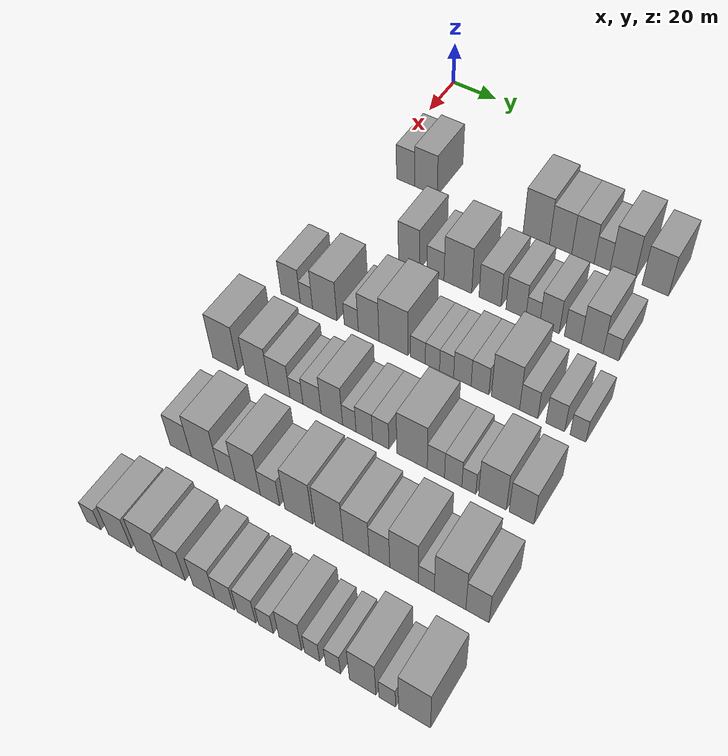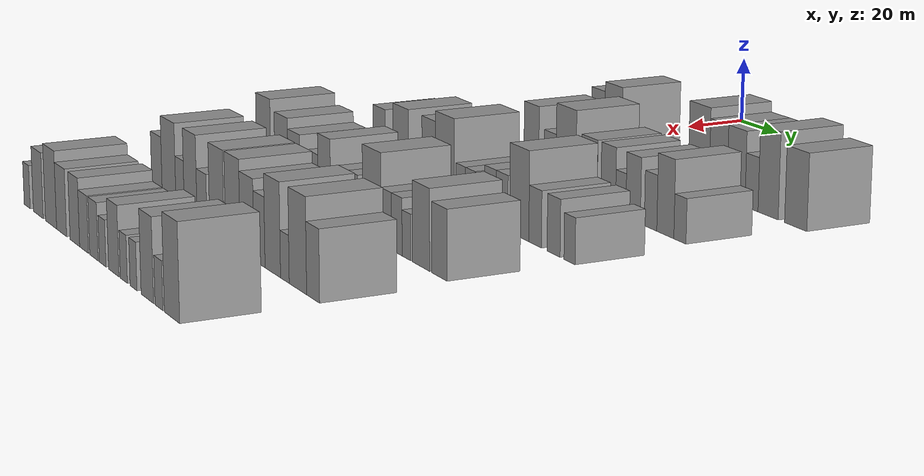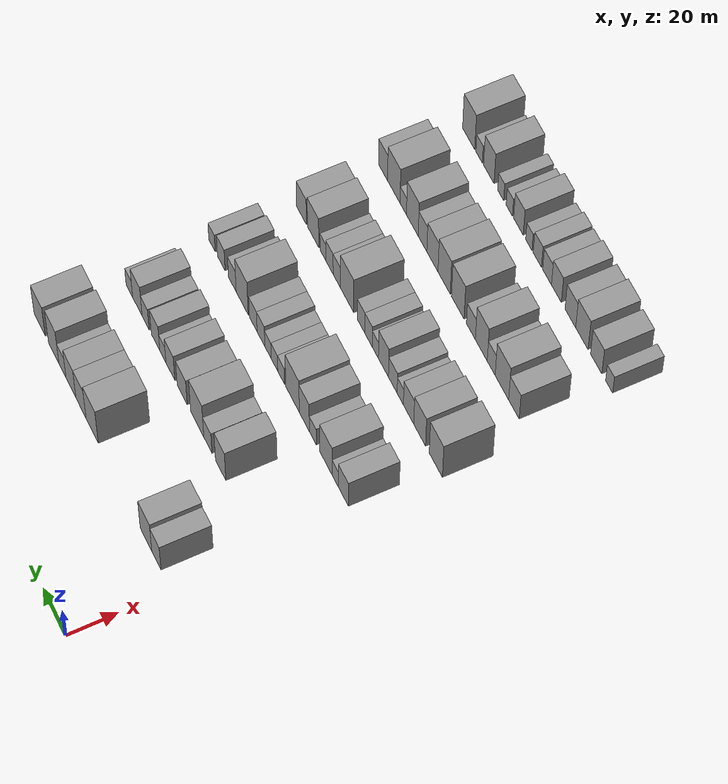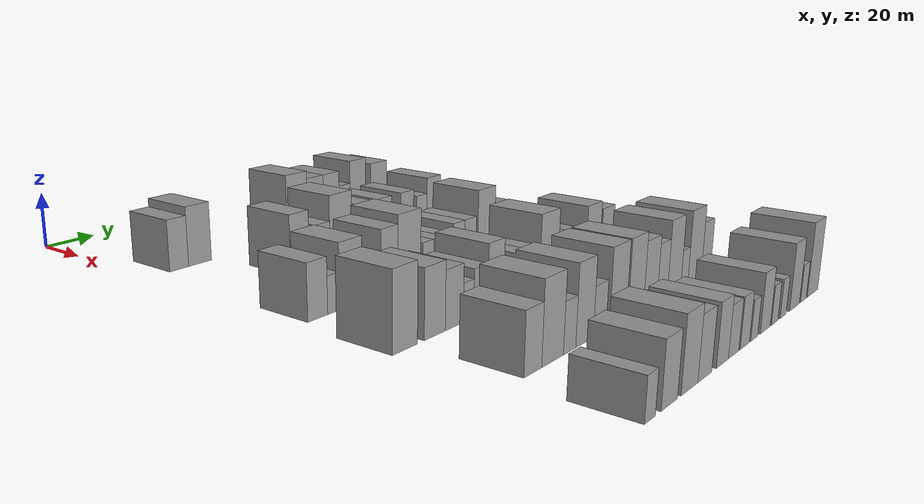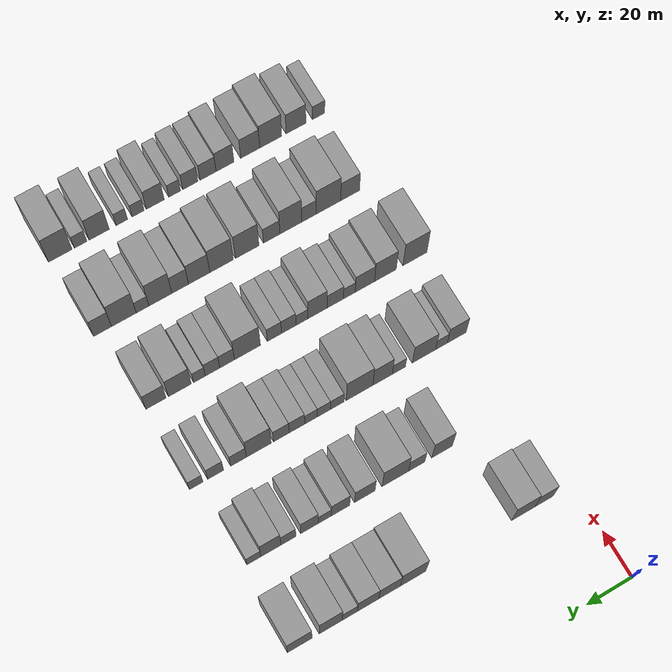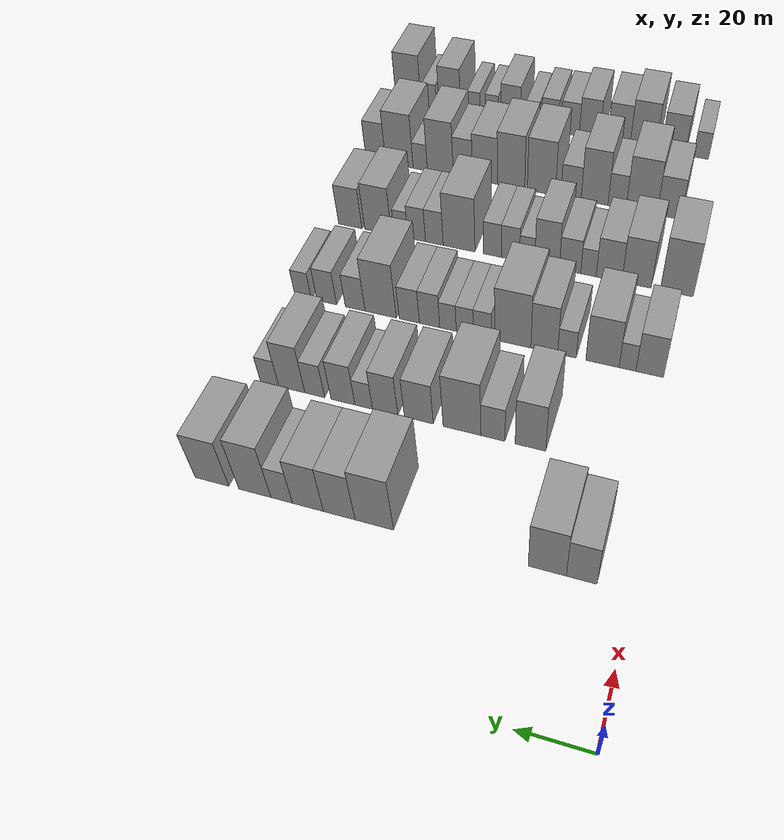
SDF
<sdf version="1.6">
 <world name="default">
  <model name="building_67">
   <static>1</static>
   <pose>50.0000 12.7950 0 0.000000 0.000000 0.000000</pose>
   <link name="link">
    <pose>0 0 9.00 0 0 0</pose>
    <collision name="collision"><geometry><box><size>20.0000 8.0103 18.0000</size></box></geometry></collision>
    <visual name="visual">
     <cast_shadows>0</cast_shadows>
     <geometry><box><size>20.0000 8.0103 18.0000</size></box></geometry>
     <material>
      <script>
       <uri>model://grey_wall/materials/scripts</uri>
       <uri>model://grey_wall/materials/textures</uri>
       <name>vrc/grey_wall</name>
      </script>
     </material>
    </visual>
   </link>
  </model>
  <model name="building_68">
   <static>1</static>
   <pose>50.0000 21.8541 0 0.000000 0.000000 0.000000</pose>
   <link name="link">
    <pose>0 0 10.50 0 0 0</pose>
    <collision name="collision"><geometry><box><size>20.0000 10.1078 21.0000</size></box></geometry></collision>
    <visual name="visual">
     <cast_shadows>0</cast_shadows>
     <geometry><box><size>20.0000 10.1078 21.0000</size></box></geometry>
     <material>
      <script>
       <uri>model://grey_wall/materials/scripts</uri>
       <uri>model://grey_wall/materials/textures</uri>
       <name>vrc/grey_wall</name>
      </script>
     </material>
    </visual>
   </link>
  </model>
  <model name="building_69">
   <static>1</static>
   <pose>50.0000 69.3415 0 0.000000 0.000000 0.000000</pose>
   <link name="link">
    <pose>0 0 12.00 0 0 0</pose>
    <collision name="collision"><geometry><box><size>20.0000 10.9557 24.0000</size></box></geometry></collision>
    <visual name="visual">
     <cast_shadows>0</cast_shadows>
     <geometry><box><size>20.0000 10.9557 24.0000</size></box></geometry>
     <material>
      <script>
       <uri>model://grey_wall/materials/scripts</uri>
       <uri>model://grey_wall/materials/textures</uri>
       <name>vrc/grey_wall</name>
      </script>
     </material>
    </visual>
   </link>
  </model>
  <model name="building_70">
   <static>1</static>
   <pose>50.0000 79.3716 0 0.000000 0.000000 0.000000</pose>
   <link name="link">
    <pose>0 0 10.50 0 0 0</pose>
    <collision name="collision"><geometry><box><size>20.0000 9.1044 21.0000</size></box></geometry></collision>
    <visual name="visual">
     <cast_shadows>0</cast_shadows>
     <geometry><box><size>20.0000 9.1044 21.0000</size></box></geometry>
     <material>
      <script>
       <uri>model://grey_wall/materials/scripts</uri>
       <uri>model://grey_wall/materials/textures</uri>
       <name>vrc/grey_wall</name>
      </script>
     </material>
    </visual>
   </link>
  </model>
  <model name="building_71">
   <static>1</static>
   <pose>50.0000 88.4283 0 0.000000 0.000000 0.000000</pose>
   <link name="link">
    <pose>0 0 10.50 0 0 0</pose>
    <collision name="collision"><geometry><box><size>20.0000 9.0091 21.0000</size></box></geometry></collision>
    <visual name="visual">
     <cast_shadows>0</cast_shadows>
     <geometry><box><size>20.0000 9.0091 21.0000</size></box></geometry>
     <material>
      <script>
       <uri>model://grey_wall/materials/scripts</uri>
       <uri>model://grey_wall/materials/textures</uri>
       <name>vrc/grey_wall</name>
      </script>
     </material>
    </visual>
   </link>
  </model>
  <model name="building_72">
   <static>1</static>
   <pose>50.0000 96.1173 0 0.000000 0.000000 0.000000</pose>
   <link name="link">
    <pose>0 0 7.50 0 0 0</pose>
    <collision name="collision"><geometry><box><size>20.0000 6.3689 15.0000</size></box></geometry></collision>
    <visual name="visual">
     <cast_shadows>0</cast_shadows>
     <geometry><box><size>20.0000 6.3689 15.0000</size></box></geometry>
     <material>
      <script>
       <uri>model://grey_wall/materials/scripts</uri>
       <uri>model://grey_wall/materials/textures</uri>
       <name>vrc/grey_wall</name>
      </script>
     </material>
    </visual>
   </link>
  </model>
  <model name="building_73">
   <static>1</static>
   <pose>50.0000 104.1100 0 0.000000 0.000000 0.000000</pose>
   <link name="link">
    <pose>0 0 12.00 0 0 0</pose>
    <collision name="collision"><geometry><box><size>20.0000 9.6165 24.0000</size></box></geometry></collision>
    <visual name="visual">
     <cast_shadows>0</cast_shadows>
     <geometry><box><size>20.0000 9.6165 24.0000</size></box></geometry>
     <material>
      <script>
       <uri>model://grey_wall/materials/scripts</uri>
       <uri>model://grey_wall/materials/textures</uri>
       <name>vrc/grey_wall</name>
      </script>
     </material>
    </visual>
   </link>
  </model>
  <model name="building_74">
   <static>1</static>
   <pose>50.0000 117.0434 0 0.000000 0.000000 0.000000</pose>
   <link name="link">
    <pose>0 0 10.50 0 0 0</pose>
    <collision name="collision"><geometry><box><size>20.0000 10.2503 21.0000</size></box></geometry></collision>
    <visual name="visual">
     <cast_shadows>0</cast_shadows>
     <geometry><box><size>20.0000 10.2503 21.0000</size></box></geometry>
     <material>
      <script>
       <uri>model://grey_wall/materials/scripts</uri>
       <uri>model://grey_wall/materials/textures</uri>
       <name>vrc/grey_wall</name>
      </script>
     </material>
    </visual>
   </link>
  </model>
  <model name="building_185">
   <static>1</static>
   <pose>85.0000 35.5126 0 0.000000 0.000000 0.000000</pose>
   <link name="link">
    <pose>0 0 10.50 0 0 0</pose>
    <collision name="collision"><geometry><box><size>20.0000 8.9503 21.0000</size></box></geometry></collision>
    <visual name="visual">
     <cast_shadows>0</cast_shadows>
     <geometry><box><size>20.0000 8.9503 21.0000</size></box></geometry>
     <material>
      <script>
       <uri>model://grey_wall/materials/scripts</uri>
       <uri>model://grey_wall/materials/textures</uri>
       <name>vrc/grey_wall</name>
      </script>
     </material>
    </visual>
   </link>
  </model>
  <model name="building_186">
   <static>1</static>
   <pose>85.0000 46.5726 0 0.000000 0.000000 0.000000</pose>
   <link name="link">
    <pose>0 0 7.50 0 0 0</pose>
    <collision name="collision"><geometry><box><size>20.0000 7.1698 15.0000</size></box></geometry></collision>
    <visual name="visual">
     <cast_shadows>0</cast_shadows>
     <geometry><box><size>20.0000 7.1698 15.0000</size></box></geometry>
     <material>
      <script>
       <uri>model://grey_wall/materials/scripts</uri>
       <uri>model://grey_wall/materials/textures</uri>
       <name>vrc/grey_wall</name>
      </script>
     </material>
    </visual>
   </link>
  </model>
  <model name="building_187">
   <static>1</static>
   <pose>85.0000 55.8489 0 0.000000 0.000000 0.000000</pose>
   <link name="link">
    <pose>0 0 12.00 0 0 0</pose>
    <collision name="collision"><geometry><box><size>20.0000 11.3827 24.0000</size></box></geometry></collision>
    <visual name="visual">
     <cast_shadows>0</cast_shadows>
     <geometry><box><size>20.0000 11.3827 24.0000</size></box></geometry>
     <material>
      <script>
       <uri>model://grey_wall/materials/scripts</uri>
       <uri>model://grey_wall/materials/textures</uri>
       <name>vrc/grey_wall</name>
      </script>
     </material>
    </visual>
   </link>
  </model>
  <model name="building_188">
   <static>1</static>
   <pose>85.0000 68.9598 0 0.000000 0.000000 0.000000</pose>
   <link name="link">
    <pose>0 0 9.00 0 0 0</pose>
    <collision name="collision"><geometry><box><size>20.0000 8.8390 18.0000</size></box></geometry></collision>
    <visual name="visual">
     <cast_shadows>0</cast_shadows>
     <geometry><box><size>20.0000 8.8390 18.0000</size></box></geometry>
     <material>
      <script>
       <uri>model://grey_wall/materials/scripts</uri>
       <uri>model://grey_wall/materials/textures</uri>
       <name>vrc/grey_wall</name>
      </script>
     </material>
    </visual>
   </link>
  </model>
  <model name="building_189">
   <static>1</static>
   <pose>85.0000 79.3357 0 0.000000 0.000000 0.000000</pose>
   <link name="link">
    <pose>0 0 9.00 0 0 0</pose>
    <collision name="collision"><geometry><box><size>20.0000 7.9128 18.0000</size></box></geometry></collision>
    <visual name="visual">
     <cast_shadows>0</cast_shadows>
     <geometry><box><size>20.0000 7.9128 18.0000</size></box></geometry>
     <material>
      <script>
       <uri>model://grey_wall/materials/scripts</uri>
       <uri>model://grey_wall/materials/textures</uri>
       <name>vrc/grey_wall</name>
      </script>
     </material>
    </visual>
   </link>
  </model>
  <model name="building_190">
   <static>1</static>
   <pose>85.0000 86.0257 0 0.000000 0.000000 0.000000</pose>
   <link name="link">
    <pose>0 0 6.00 0 0 0</pose>
    <collision name="collision"><geometry><box><size>20.0000 5.4672 12.0000</size></box></geometry></collision>
    <visual name="visual">
     <cast_shadows>0</cast_shadows>
     <geometry><box><size>20.0000 5.4672 12.0000</size></box></geometry>
     <material>
      <script>
       <uri>model://grey_wall/materials/scripts</uri>
       <uri>model://grey_wall/materials/textures</uri>
       <name>vrc/grey_wall</name>
      </script>
     </material>
    </visual>
   </link>
  </model>
  <model name="building_191">
   <static>1</static>
   <pose>85.0000 92.5351 0 0.000000 0.000000 0.000000</pose>
   <link name="link">
    <pose>0 0 9.00 0 0 0</pose>
    <collision name="collision"><geometry><box><size>20.0000 7.5516 18.0000</size></box></geometry></collision>
    <visual name="visual">
     <cast_shadows>0</cast_shadows>
     <geometry><box><size>20.0000 7.5516 18.0000</size></box></geometry>
     <material>
      <script>
       <uri>model://grey_wall/materials/scripts</uri>
       <uri>model://grey_wall/materials/textures</uri>
       <name>vrc/grey_wall</name>
      </script>
     </material>
    </visual>
   </link>
  </model>
  <model name="building_192">
   <static>1</static>
   <pose>85.0000 101.4828 0 0.000000 0.000000 0.000000</pose>
   <link name="link">
    <pose>0 0 7.50 0 0 0</pose>
    <collision name="collision"><geometry><box><size>20.0000 6.3438 15.0000</size></box></geometry></collision>
    <visual name="visual">
     <cast_shadows>0</cast_shadows>
     <geometry><box><size>20.0000 6.3438 15.0000</size></box></geometry>
     <material>
      <script>
       <uri>model://grey_wall/materials/scripts</uri>
       <uri>model://grey_wall/materials/textures</uri>
       <name>vrc/grey_wall</name>
      </script>
     </material>
    </visual>
   </link>
  </model>
  <model name="building_193">
   <static>1</static>
   <pose>85.0000 108.8783 0 0.000000 0.000000 0.000000</pose>
   <link name="link">
    <pose>0 0 10.50 0 0 0</pose>
    <collision name="collision"><geometry><box><size>20.0000 8.4472 21.0000</size></box></geometry></collision>
    <visual name="visual">
     <cast_shadows>0</cast_shadows>
     <geometry><box><size>20.0000 8.4472 21.0000</size></box></geometry>
     <material>
      <script>
       <uri>model://grey_wall/materials/scripts</uri>
       <uri>model://grey_wall/materials/textures</uri>
       <name>vrc/grey_wall</name>
      </script>
     </material>
    </visual>
   </link>
  </model>
  <model name="building_194">
   <static>1</static>
   <pose>85.0000 116.0498 0 0.000000 0.000000 0.000000</pose>
   <link name="link">
    <pose>0 0 6.00 0 0 0</pose>
    <collision name="collision"><geometry><box><size>20.0000 5.8960 12.0000</size></box></geometry></collision>
    <visual name="visual">
     <cast_shadows>0</cast_shadows>
     <geometry><box><size>20.0000 5.8960 12.0000</size></box></geometry>
     <material>
      <script>
       <uri>model://grey_wall/materials/scripts</uri>
       <uri>model://grey_wall/materials/textures</uri>
       <name>vrc/grey_wall</name>
      </script>
     </material>
    </visual>
   </link>
  </model>
  <model name="building_313">
   <static>1</static>
   <pose>120.0000 7.5555 0 0.000000 0.000000 0.000000</pose>
   <link name="link">
    <pose>0 0 9.00 0 0 0</pose>
    <collision name="collision"><geometry><box><size>20.0000 8.3975 18.0000</size></box></geometry></collision>
    <visual name="visual">
     <cast_shadows>0</cast_shadows>
     <geometry><box><size>20.0000 8.3975 18.0000</size></box></geometry>
     <material>
      <script>
       <uri>model://grey_wall/materials/scripts</uri>
       <uri>model://grey_wall/materials/textures</uri>
       <name>vrc/grey_wall</name>
      </script>
     </material>
    </visual>
   </link>
  </model>
  <model name="building_314">
   <static>1</static>
   <pose>120.0000 14.3460 0 0.000000 0.000000 0.000000</pose>
   <link name="link">
    <pose>0 0 6.00 0 0 0</pose>
    <collision name="collision"><geometry><box><size>20.0000 5.1835 12.0000</size></box></geometry></collision>
    <visual name="visual">
     <cast_shadows>0</cast_shadows>
     <geometry><box><size>20.0000 5.1835 12.0000</size></box></geometry>
     <material>
      <script>
       <uri>model://grey_wall/materials/scripts</uri>
       <uri>model://grey_wall/materials/textures</uri>
       <name>vrc/grey_wall</name>
      </script>
     </material>
    </visual>
   </link>
  </model>
  <model name="building_315">
   <static>1</static>
   <pose>120.0000 22.0941 0 0.000000 0.000000 0.000000</pose>
   <link name="link">
    <pose>0 0 10.50 0 0 0</pose>
    <collision name="collision"><geometry><box><size>20.0000 10.3126 21.0000</size></box></geometry></collision>
    <visual name="visual">
     <cast_shadows>0</cast_shadows>
     <geometry><box><size>20.0000 10.3126 21.0000</size></box></geometry>
     <material>
      <script>
       <uri>model://grey_wall/materials/scripts</uri>
       <uri>model://grey_wall/materials/textures</uri>
       <name>vrc/grey_wall</name>
      </script>
     </material>
    </visual>
   </link>
  </model>
  <model name="building_316">
   <static>1</static>
   <pose>120.0000 33.1572 0 0.000000 0.000000 0.000000</pose>
   <link name="link">
    <pose>0 0 6.00 0 0 0</pose>
    <collision name="collision"><geometry><box><size>20.0000 5.8138 12.0000</size></box></geometry></collision>
    <visual name="visual">
     <cast_shadows>0</cast_shadows>
     <geometry><box><size>20.0000 5.8138 12.0000</size></box></geometry>
     <material>
      <script>
       <uri>model://grey_wall/materials/scripts</uri>
       <uri>model://grey_wall/materials/textures</uri>
       <name>vrc/grey_wall</name>
      </script>
     </material>
    </visual>
   </link>
  </model>
  <model name="building_317">
   <static>1</static>
   <pose>120.0000 40.3240 0 0.000000 0.000000 0.000000</pose>
   <link name="link">
    <pose>0 0 10.50 0 0 0</pose>
    <collision name="collision"><geometry><box><size>20.0000 8.5197 21.0000</size></box></geometry></collision>
    <visual name="visual">
     <cast_shadows>0</cast_shadows>
     <geometry><box><size>20.0000 8.5197 21.0000</size></box></geometry>
     <material>
      <script>
       <uri>model://grey_wall/materials/scripts</uri>
       <uri>model://grey_wall/materials/textures</uri>
       <name>vrc/grey_wall</name>
      </script>
     </material>
    </visual>
   </link>
  </model>
  <model name="building_318">
   <static>1</static>
   <pose>120.0000 50.4020 0 0.000000 0.000000 0.000000</pose>
   <link name="link">
    <pose>0 0 12.00 0 0 0</pose>
    <collision name="collision"><geometry><box><size>20.0000 11.6364 24.0000</size></box></geometry></collision>
    <visual name="visual">
     <cast_shadows>0</cast_shadows>
     <geometry><box><size>20.0000 11.6364 24.0000</size></box></geometry>
     <material>
      <script>
       <uri>model://grey_wall/materials/scripts</uri>
       <uri>model://grey_wall/materials/textures</uri>
       <name>vrc/grey_wall</name>
      </script>
     </material>
    </visual>
   </link>
  </model>
  <model name="building_319">
   <static>1</static>
   <pose>120.0000 60.1606 0 0.000000 0.000000 0.000000</pose>
   <link name="link">
    <pose>0 0 6.00 0 0 0</pose>
    <collision name="collision"><geometry><box><size>20.0000 5.8808 12.0000</size></box></geometry></collision>
    <visual name="visual">
     <cast_shadows>0</cast_shadows>
     <geometry><box><size>20.0000 5.8808 12.0000</size></box></geometry>
     <material>
      <script>
       <uri>model://grey_wall/materials/scripts</uri>
       <uri>model://grey_wall/materials/textures</uri>
       <name>vrc/grey_wall</name>
      </script>
     </material>
    </visual>
   </link>
  </model>
  <model name="building_320">
   <static>1</static>
   <pose>120.0000 65.9033 0 0.000000 0.000000 0.000000</pose>
   <link name="link">
    <pose>0 0 6.00 0 0 0</pose>
    <collision name="collision"><geometry><box><size>20.0000 5.6047 12.0000</size></box></geometry></collision>
    <visual name="visual">
     <cast_shadows>0</cast_shadows>
     <geometry><box><size>20.0000 5.6047 12.0000</size></box></geometry>
     <material>
      <script>
       <uri>model://grey_wall/materials/scripts</uri>
       <uri>model://grey_wall/materials/textures</uri>
       <name>vrc/grey_wall</name>
      </script>
     </material>
    </visual>
   </link>
  </model>
  <model name="building_321">
   <static>1</static>
   <pose>120.0000 71.4473 0 0.000000 0.000000 0.000000</pose>
   <link name="link">
    <pose>0 0 6.00 0 0 0</pose>
    <collision name="collision"><geometry><box><size>20.0000 5.4833 12.0000</size></box></geometry></collision>
    <visual name="visual">
     <cast_shadows>0</cast_shadows>
     <geometry><box><size>20.0000 5.4833 12.0000</size></box></geometry>
     <material>
      <script>
       <uri>model://grey_wall/materials/scripts</uri>
       <uri>model://grey_wall/materials/textures</uri>
       <name>vrc/grey_wall</name>
      </script>
     </material>
    </visual>
   </link>
  </model>
  <model name="building_322">
   <static>1</static>
   <pose>120.0000 77.5515 0 0.000000 0.000000 0.000000</pose>
   <link name="link">
    <pose>0 0 7.50 0 0 0</pose>
    <collision name="collision"><geometry><box><size>20.0000 6.7250 15.0000</size></box></geometry></collision>
    <visual name="visual">
     <cast_shadows>0</cast_shadows>
     <geometry><box><size>20.0000 6.7250 15.0000</size></box></geometry>
     <material>
      <script>
       <uri>model://grey_wall/materials/scripts</uri>
       <uri>model://grey_wall/materials/textures</uri>
       <name>vrc/grey_wall</name>
      </script>
     </material>
    </visual>
   </link>
  </model>
  <model name="building_323">
   <static>1</static>
   <pose>120.0000 84.2907 0 0.000000 0.000000 0.000000</pose>
   <link name="link">
    <pose>0 0 7.50 0 0 0</pose>
    <collision name="collision"><geometry><box><size>20.0000 6.7534 15.0000</size></box></geometry></collision>
    <visual name="visual">
     <cast_shadows>0</cast_shadows>
     <geometry><box><size>20.0000 6.7534 15.0000</size></box></geometry>
     <material>
      <script>
       <uri>model://grey_wall/materials/scripts</uri>
       <uri>model://grey_wall/materials/textures</uri>
       <name>vrc/grey_wall</name>
      </script>
     </material>
    </visual>
   </link>
  </model>
  <model name="building_324">
   <static>1</static>
   <pose>120.0000 93.9560 0 0.000000 0.000000 0.000000</pose>
   <link name="link">
    <pose>0 0 12.00 0 0 0</pose>
    <collision name="collision"><geometry><box><size>20.0000 10.5772 24.0000</size></box></geometry></collision>
    <visual name="visual">
     <cast_shadows>0</cast_shadows>
     <geometry><box><size>20.0000 10.5772 24.0000</size></box></geometry>
     <material>
      <script>
       <uri>model://grey_wall/materials/scripts</uri>
       <uri>model://grey_wall/materials/textures</uri>
       <name>vrc/grey_wall</name>
      </script>
     </material>
    </visual>
   </link>
  </model>
  <model name="building_325">
   <static>1</static>
   <pose>120.0000 102.6236 0 0.000000 0.000000 0.000000</pose>
   <link name="link">
    <pose>0 0 7.50 0 0 0</pose>
    <collision name="collision"><geometry><box><size>20.0000 6.7579 15.0000</size></box></geometry></collision>
    <visual name="visual">
     <cast_shadows>0</cast_shadows>
     <geometry><box><size>20.0000 6.7579 15.0000</size></box></geometry>
     <material>
      <script>
       <uri>model://grey_wall/materials/scripts</uri>
       <uri>model://grey_wall/materials/textures</uri>
       <name>vrc/grey_wall</name>
      </script>
     </material>
    </visual>
   </link>
  </model>
  <model name="building_326">
   <static>1</static>
   <pose>120.0000 112.3995 0 0.000000 0.000000 0.000000</pose>
   <link name="link">
    <pose>0 0 7.50 0 0 0</pose>
    <collision name="collision"><geometry><box><size>20.0000 6.7940 15.0000</size></box></geometry></collision>
    <visual name="visual">
     <cast_shadows>0</cast_shadows>
     <geometry><box><size>20.0000 6.7940 15.0000</size></box></geometry>
     <material>
      <script>
       <uri>model://grey_wall/materials/scripts</uri>
       <uri>model://grey_wall/materials/textures</uri>
       <name>vrc/grey_wall</name>
      </script>
     </material>
    </visual>
   </link>
  </model>
  <model name="building_327">
   <static>1</static>
   <pose>120.0000 120.6309 0 0.000000 0.000000 0.000000</pose>
   <link name="link">
    <pose>0 0 6.00 0 0 0</pose>
    <collision name="collision"><geometry><box><size>20.0000 5.6687 12.0000</size></box></geometry></collision>
    <visual name="visual">
     <cast_shadows>0</cast_shadows>
     <geometry><box><size>20.0000 5.6687 12.0000</size></box></geometry>
     <material>
      <script>
       <uri>model://grey_wall/materials/scripts</uri>
       <uri>model://grey_wall/materials/textures</uri>
       <name>vrc/grey_wall</name>
      </script>
     </material>
    </visual>
   </link>
  </model>
  <model name="building_430">
   <static>1</static>
   <pose>155.0000 4.8584 0 0.000000 0.000000 0.000000</pose>
   <link name="link">
    <pose>0 0 12.00 0 0 0</pose>
    <collision name="collision"><geometry><box><size>20.0000 10.7531 24.0000</size></box></geometry></collision>
    <visual name="visual">
     <cast_shadows>0</cast_shadows>
     <geometry><box><size>20.0000 10.7531 24.0000</size></box></geometry>
     <material>
      <script>
       <uri>model://grey_wall/materials/scripts</uri>
       <uri>model://grey_wall/materials/textures</uri>
       <name>vrc/grey_wall</name>
      </script>
     </material>
    </visual>
   </link>
  </model>
  <model name="building_431">
   <static>1</static>
   <pose>155.0000 18.0829 0 0.000000 0.000000 0.000000</pose>
   <link name="link">
    <pose>0 0 10.50 0 0 0</pose>
    <collision name="collision"><geometry><box><size>20.0000 9.6959 21.0000</size></box></geometry></collision>
    <visual name="visual">
     <cast_shadows>0</cast_shadows>
     <geometry><box><size>20.0000 9.6959 21.0000</size></box></geometry>
     <material>
      <script>
       <uri>model://grey_wall/materials/scripts</uri>
       <uri>model://grey_wall/materials/textures</uri>
       <name>vrc/grey_wall</name>
      </script>
     </material>
    </visual>
   </link>
  </model>
  <model name="building_432">
   <static>1</static>
   <pose>155.0000 27.2293 0 0.000000 0.000000 0.000000</pose>
   <link name="link">
    <pose>0 0 9.00 0 0 0</pose>
    <collision name="collision"><geometry><box><size>20.0000 8.5970 18.0000</size></box></geometry></collision>
    <visual name="visual">
     <cast_shadows>0</cast_shadows>
     <geometry><box><size>20.0000 8.5970 18.0000</size></box></geometry>
     <material>
      <script>
       <uri>model://grey_wall/materials/scripts</uri>
       <uri>model://grey_wall/materials/textures</uri>
       <name>vrc/grey_wall</name>
      </script>
     </material>
    </visual>
   </link>
  </model>
  <model name="building_433">
   <static>1</static>
   <pose>155.0000 34.1447 0 0.000000 0.000000 0.000000</pose>
   <link name="link">
    <pose>0 0 6.00 0 0 0</pose>
    <collision name="collision"><geometry><box><size>20.0000 5.2339 12.0000</size></box></geometry></collision>
    <visual name="visual">
     <cast_shadows>0</cast_shadows>
     <geometry><box><size>20.0000 5.2339 12.0000</size></box></geometry>
     <material>
      <script>
       <uri>model://grey_wall/materials/scripts</uri>
       <uri>model://grey_wall/materials/textures</uri>
       <name>vrc/grey_wall</name>
      </script>
     </material>
    </visual>
   </link>
  </model>
  <model name="building_434">
   <static>1</static>
   <pose>155.0000 40.3801 0 0.000000 0.000000 0.000000</pose>
   <link name="link">
    <pose>0 0 7.50 0 0 0</pose>
    <collision name="collision"><geometry><box><size>20.0000 7.2369 15.0000</size></box></geometry></collision>
    <visual name="visual">
     <cast_shadows>0</cast_shadows>
     <geometry><box><size>20.0000 7.2369 15.0000</size></box></geometry>
     <material>
      <script>
       <uri>model://grey_wall/materials/scripts</uri>
       <uri>model://grey_wall/materials/textures</uri>
       <name>vrc/grey_wall</name>
      </script>
     </material>
    </visual>
   </link>
  </model>
  <model name="building_435">
   <static>1</static>
   <pose>155.0000 48.2119 0 0.000000 0.000000 0.000000</pose>
   <link name="link">
    <pose>0 0 10.50 0 0 0</pose>
    <collision name="collision"><geometry><box><size>20.0000 8.4268 21.0000</size></box></geometry></collision>
    <visual name="visual">
     <cast_shadows>0</cast_shadows>
     <geometry><box><size>20.0000 8.4268 21.0000</size></box></geometry>
     <material>
      <script>
       <uri>model://grey_wall/materials/scripts</uri>
       <uri>model://grey_wall/materials/textures</uri>
       <name>vrc/grey_wall</name>
      </script>
     </material>
    </visual>
   </link>
  </model>
  <model name="building_436">
   <static>1</static>
   <pose>155.0000 55.0335 0 0.000000 0.000000 0.000000</pose>
   <link name="link">
    <pose>0 0 6.00 0 0 0</pose>
    <collision name="collision"><geometry><box><size>20.0000 5.2164 12.0000</size></box></geometry></collision>
    <visual name="visual">
     <cast_shadows>0</cast_shadows>
     <geometry><box><size>20.0000 5.2164 12.0000</size></box></geometry>
     <material>
      <script>
       <uri>model://grey_wall/materials/scripts</uri>
       <uri>model://grey_wall/materials/textures</uri>
       <name>vrc/grey_wall</name>
      </script>
     </material>
    </visual>
   </link>
  </model>
  <model name="building_437">
   <static>1</static>
   <pose>155.0000 60.8256 0 0.000000 0.000000 0.000000</pose>
   <link name="link">
    <pose>0 0 7.50 0 0 0</pose>
    <collision name="collision"><geometry><box><size>20.0000 6.3679 15.0000</size></box></geometry></collision>
    <visual name="visual">
     <cast_shadows>0</cast_shadows>
     <geometry><box><size>20.0000 6.3679 15.0000</size></box></geometry>
     <material>
      <script>
       <uri>model://grey_wall/materials/scripts</uri>
       <uri>model://grey_wall/materials/textures</uri>
       <name>vrc/grey_wall</name>
      </script>
     </material>
    </visual>
   </link>
  </model>
  <model name="building_438">
   <static>1</static>
   <pose>155.0000 67.1264 0 0.000000 0.000000 0.000000</pose>
   <link name="link">
    <pose>0 0 7.50 0 0 0</pose>
    <collision name="collision"><geometry><box><size>20.0000 6.2338 15.0000</size></box></geometry></collision>
    <visual name="visual">
     <cast_shadows>0</cast_shadows>
     <geometry><box><size>20.0000 6.2338 15.0000</size></box></geometry>
     <material>
      <script>
       <uri>model://grey_wall/materials/scripts</uri>
       <uri>model://grey_wall/materials/textures</uri>
       <name>vrc/grey_wall</name>
      </script>
     </material>
    </visual>
   </link>
  </model>
  <model name="building_439">
   <static>1</static>
   <pose>155.0000 78.8919 0 0.000000 0.000000 0.000000</pose>
   <link name="link">
    <pose>0 0 12.00 0 0 0</pose>
    <collision name="collision"><geometry><box><size>20.0000 11.2971 24.0000</size></box></geometry></collision>
    <visual name="visual">
     <cast_shadows>0</cast_shadows>
     <geometry><box><size>20.0000 11.2971 24.0000</size></box></geometry>
     <material>
      <script>
       <uri>model://grey_wall/materials/scripts</uri>
       <uri>model://grey_wall/materials/textures</uri>
       <name>vrc/grey_wall</name>
      </script>
     </material>
    </visual>
   </link>
  </model>
  <model name="building_440">
   <static>1</static>
   <pose>155.0000 87.7095 0 0.000000 0.000000 0.000000</pose>
   <link name="link">
    <pose>0 0 7.50 0 0 0</pose>
    <collision name="collision"><geometry><box><size>20.0000 6.3382 15.0000</size></box></geometry></collision>
    <visual name="visual">
     <cast_shadows>0</cast_shadows>
     <geometry><box><size>20.0000 6.3382 15.0000</size></box></geometry>
     <material>
      <script>
       <uri>model://grey_wall/materials/scripts</uri>
       <uri>model://grey_wall/materials/textures</uri>
       <name>vrc/grey_wall</name>
      </script>
     </material>
    </visual>
   </link>
  </model>
  <model name="building_441">
   <static>1</static>
   <pose>155.0000 94.0341 0 0.000000 0.000000 0.000000</pose>
   <link name="link">
    <pose>0 0 7.50 0 0 0</pose>
    <collision name="collision"><geometry><box><size>20.0000 6.3111 15.0000</size></box></geometry></collision>
    <visual name="visual">
     <cast_shadows>0</cast_shadows>
     <geometry><box><size>20.0000 6.3111 15.0000</size></box></geometry>
     <material>
      <script>
       <uri>model://grey_wall/materials/scripts</uri>
       <uri>model://grey_wall/materials/textures</uri>
       <name>vrc/grey_wall</name>
      </script>
     </material>
    </visual>
   </link>
  </model>
  <model name="building_442">
   <static>1</static>
   <pose>155.0000 99.6969 0 0.000000 0.000000 0.000000</pose>
   <link name="link">
    <pose>0 0 6.00 0 0 0</pose>
    <collision name="collision"><geometry><box><size>20.0000 5.0145 12.0000</size></box></geometry></collision>
    <visual name="visual">
     <cast_shadows>0</cast_shadows>
     <geometry><box><size>20.0000 5.0145 12.0000</size></box></geometry>
     <material>
      <script>
       <uri>model://grey_wall/materials/scripts</uri>
       <uri>model://grey_wall/materials/textures</uri>
       <name>vrc/grey_wall</name>
      </script>
     </material>
    </visual>
   </link>
  </model>
  <model name="building_443">
   <static>1</static>
   <pose>155.0000 108.1194 0 0.000000 0.000000 0.000000</pose>
   <link name="link">
    <pose>0 0 10.50 0 0 0</pose>
    <collision name="collision"><geometry><box><size>20.0000 9.8305 21.0000</size></box></geometry></collision>
    <visual name="visual">
     <cast_shadows>0</cast_shadows>
     <geometry><box><size>20.0000 9.8305 21.0000</size></box></geometry>
     <material>
      <script>
       <uri>model://grey_wall/materials/scripts</uri>
       <uri>model://grey_wall/materials/textures</uri>
       <name>vrc/grey_wall</name>
      </script>
     </material>
    </visual>
   </link>
  </model>
  <model name="building_444">
   <static>1</static>
   <pose>155.0000 118.3511 0 0.000000 0.000000 0.000000</pose>
   <link name="link">
    <pose>0 0 9.00 0 0 0</pose>
    <collision name="collision"><geometry><box><size>20.0000 8.6330 18.0000</size></box></geometry></collision>
    <visual name="visual">
     <cast_shadows>0</cast_shadows>
     <geometry><box><size>20.0000 8.6330 18.0000</size></box></geometry>
     <material>
      <script>
       <uri>model://grey_wall/materials/scripts</uri>
       <uri>model://grey_wall/materials/textures</uri>
       <name>vrc/grey_wall</name>
      </script>
     </material>
    </visual>
   </link>
  </model>
  <model name="building_558">
   <static>1</static>
   <pose>190.0000 13.0935 0 0.000000 0.000000 0.000000</pose>
   <link name="link">
    <pose>0 0 9.00 0 0 0</pose>
    <collision name="collision"><geometry><box><size>20.0000 8.5135 18.0000</size></box></geometry></collision>
    <visual name="visual">
     <cast_shadows>0</cast_shadows>
     <geometry><box><size>20.0000 8.5135 18.0000</size></box></geometry>
     <material>
      <script>
       <uri>model://grey_wall/materials/scripts</uri>
       <uri>model://grey_wall/materials/textures</uri>
       <name>vrc/grey_wall</name>
      </script>
     </material>
    </visual>
   </link>
  </model>
  <model name="building_559">
   <static>1</static>
   <pose>190.0000 22.8180 0 0.000000 0.000000 0.000000</pose>
   <link name="link">
    <pose>0 0 12.00 0 0 0</pose>
    <collision name="collision"><geometry><box><size>20.0000 10.9354 24.0000</size></box></geometry></collision>
    <visual name="visual">
     <cast_shadows>0</cast_shadows>
     <geometry><box><size>20.0000 10.9354 24.0000</size></box></geometry>
     <material>
      <script>
       <uri>model://grey_wall/materials/scripts</uri>
       <uri>model://grey_wall/materials/textures</uri>
       <name>vrc/grey_wall</name>
      </script>
     </material>
    </visual>
   </link>
  </model>
  <model name="building_560">
   <static>1</static>
   <pose>190.0000 31.5330 0 0.000000 0.000000 0.000000</pose>
   <link name="link">
    <pose>0 0 7.50 0 0 0</pose>
    <collision name="collision"><geometry><box><size>20.0000 6.4946 15.0000</size></box></geometry></collision>
    <visual name="visual">
     <cast_shadows>0</cast_shadows>
     <geometry><box><size>20.0000 6.4946 15.0000</size></box></geometry>
     <material>
      <script>
       <uri>model://grey_wall/materials/scripts</uri>
       <uri>model://grey_wall/materials/textures</uri>
       <name>vrc/grey_wall</name>
      </script>
     </material>
    </visual>
   </link>
  </model>
  <model name="building_561">
   <static>1</static>
   <pose>190.0000 39.6501 0 0.000000 0.000000 0.000000</pose>
   <link name="link">
    <pose>0 0 12.00 0 0 0</pose>
    <collision name="collision"><geometry><box><size>20.0000 9.7396 24.0000</size></box></geometry></collision>
    <visual name="visual">
     <cast_shadows>0</cast_shadows>
     <geometry><box><size>20.0000 9.7396 24.0000</size></box></geometry>
     <material>
      <script>
       <uri>model://grey_wall/materials/scripts</uri>
       <uri>model://grey_wall/materials/textures</uri>
       <name>vrc/grey_wall</name>
      </script>
     </material>
    </visual>
   </link>
  </model>
  <model name="building_562">
   <static>1</static>
   <pose>190.0000 48.1880 0 0.000000 0.000000 0.000000</pose>
   <link name="link">
    <pose>0 0 7.50 0 0 0</pose>
    <collision name="collision"><geometry><box><size>20.0000 7.3362 15.0000</size></box></geometry></collision>
    <visual name="visual">
     <cast_shadows>0</cast_shadows>
     <geometry><box><size>20.0000 7.3362 15.0000</size></box></geometry>
     <material>
      <script>
       <uri>model://grey_wall/materials/scripts</uri>
       <uri>model://grey_wall/materials/textures</uri>
       <name>vrc/grey_wall</name>
      </script>
     </material>
    </visual>
   </link>
  </model>
  <model name="building_563">
   <static>1</static>
   <pose>190.0000 59.0593 0 0.000000 0.000000 0.000000</pose>
   <link name="link">
    <pose>0 0 12.00 0 0 0</pose>
    <collision name="collision"><geometry><box><size>20.0000 10.4064 24.0000</size></box></geometry></collision>
    <visual name="visual">
     <cast_shadows>0</cast_shadows>
     <geometry><box><size>20.0000 10.4064 24.0000</size></box></geometry>
     <material>
      <script>
       <uri>model://grey_wall/materials/scripts</uri>
       <uri>model://grey_wall/materials/textures</uri>
       <name>vrc/grey_wall</name>
      </script>
     </material>
    </visual>
   </link>
  </model>
  <model name="building_564">
   <static>1</static>
   <pose>190.0000 70.3885 0 0.000000 0.000000 0.000000</pose>
   <link name="link">
    <pose>0 0 12.00 0 0 0</pose>
    <collision name="collision"><geometry><box><size>20.0000 10.2522 24.0000</size></box></geometry></collision>
    <visual name="visual">
     <cast_shadows>0</cast_shadows>
     <geometry><box><size>20.0000 10.2522 24.0000</size></box></geometry>
     <material>
      <script>
       <uri>model://grey_wall/materials/scripts</uri>
       <uri>model://grey_wall/materials/textures</uri>
       <name>vrc/grey_wall</name>
      </script>
     </material>
    </visual>
   </link>
  </model>
  <model name="building_565">
   <static>1</static>
   <pose>190.0000 80.1894 0 0.000000 0.000000 0.000000</pose>
   <link name="link">
    <pose>0 0 10.50 0 0 0</pose>
    <collision name="collision"><geometry><box><size>20.0000 9.3496 21.0000</size></box></geometry></collision>
    <visual name="visual">
     <cast_shadows>0</cast_shadows>
     <geometry><box><size>20.0000 9.3496 21.0000</size></box></geometry>
     <material>
      <script>
       <uri>model://grey_wall/materials/scripts</uri>
       <uri>model://grey_wall/materials/textures</uri>
       <name>vrc/grey_wall</name>
      </script>
     </material>
    </visual>
   </link>
  </model>
  <model name="building_566">
   <static>1</static>
   <pose>190.0000 88.5115 0 0.000000 0.000000 0.000000</pose>
   <link name="link">
    <pose>0 0 9.00 0 0 0</pose>
    <collision name="collision"><geometry><box><size>20.0000 7.2944 18.0000</size></box></geometry></collision>
    <visual name="visual">
     <cast_shadows>0</cast_shadows>
     <geometry><box><size>20.0000 7.2944 18.0000</size></box></geometry>
     <material>
      <script>
       <uri>model://grey_wall/materials/scripts</uri>
       <uri>model://grey_wall/materials/textures</uri>
       <name>vrc/grey_wall</name>
      </script>
     </material>
    </visual>
   </link>
  </model>
  <model name="building_567">
   <static>1</static>
   <pose>190.0000 97.1524 0 0.000000 0.000000 0.000000</pose>
   <link name="link">
    <pose>0 0 12.00 0 0 0</pose>
    <collision name="collision"><geometry><box><size>20.0000 9.9874 24.0000</size></box></geometry></collision>
    <visual name="visual">
     <cast_shadows>0</cast_shadows>
     <geometry><box><size>20.0000 9.9874 24.0000</size></box></geometry>
     <material>
      <script>
       <uri>model://grey_wall/materials/scripts</uri>
       <uri>model://grey_wall/materials/textures</uri>
       <name>vrc/grey_wall</name>
      </script>
     </material>
    </visual>
   </link>
  </model>
  <model name="building_568">
   <static>1</static>
   <pose>190.0000 104.8913 0 0.000000 0.000000 0.000000</pose>
   <link name="link">
    <pose>0 0 6.00 0 0 0</pose>
    <collision name="collision"><geometry><box><size>20.0000 5.4905 12.0000</size></box></geometry></collision>
    <visual name="visual">
     <cast_shadows>0</cast_shadows>
     <geometry><box><size>20.0000 5.4905 12.0000</size></box></geometry>
     <material>
      <script>
       <uri>model://grey_wall/materials/scripts</uri>
       <uri>model://grey_wall/materials/textures</uri>
       <name>vrc/grey_wall</name>
      </script>
     </material>
    </visual>
   </link>
  </model>
  <model name="building_569">
   <static>1</static>
   <pose>190.0000 112.9837 0 0.000000 0.000000 0.000000</pose>
   <link name="link">
    <pose>0 0 12.00 0 0 0</pose>
    <collision name="collision"><geometry><box><size>20.0000 10.6942 24.0000</size></box></geometry></collision>
    <visual name="visual">
     <cast_shadows>0</cast_shadows>
     <geometry><box><size>20.0000 10.6942 24.0000</size></box></geometry>
     <material>
      <script>
       <uri>model://grey_wall/materials/scripts</uri>
       <uri>model://grey_wall/materials/textures</uri>
       <name>vrc/grey_wall</name>
      </script>
     </material>
    </visual>
   </link>
  </model>
  <model name="building_570">
   <static>1</static>
   <pose>190.0000 122.2152 0 0.000000 0.000000 0.000000</pose>
   <link name="link">
    <pose>0 0 9.00 0 0 0</pose>
    <collision name="collision"><geometry><box><size>20.0000 7.7688 18.0000</size></box></geometry></collision>
    <visual name="visual">
     <cast_shadows>0</cast_shadows>
     <geometry><box><size>20.0000 7.7688 18.0000</size></box></geometry>
     <material>
      <script>
       <uri>model://grey_wall/materials/scripts</uri>
       <uri>model://grey_wall/materials/textures</uri>
       <name>vrc/grey_wall</name>
      </script>
     </material>
    </visual>
   </link>
  </model>
  <model name="building_683">
   <static>1</static>
   <pose>225.0000 6.7867 0 0.000000 0.000000 0.000000</pose>
   <link name="link">
    <pose>0 0 6.00 0 0 0</pose>
    <collision name="collision"><geometry><box><size>20.0000 5.5917 12.0000</size></box></geometry></collision>
    <visual name="visual">
     <cast_shadows>0</cast_shadows>
     <geometry><box><size>20.0000 5.5917 12.0000</size></box></geometry>
     <material>
      <script>
       <uri>model://grey_wall/materials/scripts</uri>
       <uri>model://grey_wall/materials/textures</uri>
       <name>vrc/grey_wall</name>
      </script>
     </material>
    </visual>
   </link>
  </model>
  <model name="building_684">
   <static>1</static>
   <pose>225.0000 17.0790 0 0.000000 0.000000 0.000000</pose>
   <link name="link">
    <pose>0 0 9.00 0 0 0</pose>
    <collision name="collision"><geometry><box><size>20.0000 8.9931 18.0000</size></box></geometry></collision>
    <visual name="visual">
     <cast_shadows>0</cast_shadows>
     <geometry><box><size>20.0000 8.9931 18.0000</size></box></geometry>
     <material>
      <script>
       <uri>model://grey_wall/materials/scripts</uri>
       <uri>model://grey_wall/materials/textures</uri>
       <name>vrc/grey_wall</name>
      </script>
     </material>
    </visual>
   </link>
  </model>
  <model name="building_685">
   <static>1</static>
   <pose>225.0000 28.5305 0 0.000000 0.000000 0.000000</pose>
   <link name="link">
    <pose>0 0 10.50 0 0 0</pose>
    <collision name="collision"><geometry><box><size>20.0000 9.9099 21.0000</size></box></geometry></collision>
    <visual name="visual">
     <cast_shadows>0</cast_shadows>
     <geometry><box><size>20.0000 9.9099 21.0000</size></box></geometry>
     <material>
      <script>
       <uri>model://grey_wall/materials/scripts</uri>
       <uri>model://grey_wall/materials/textures</uri>
       <name>vrc/grey_wall</name>
      </script>
     </material>
    </visual>
   </link>
  </model>
  <model name="building_686">
   <static>1</static>
   <pose>225.0000 37.7849 0 0.000000 0.000000 0.000000</pose>
   <link name="link">
    <pose>0 0 9.00 0 0 0</pose>
    <collision name="collision"><geometry><box><size>20.0000 8.5988 18.0000</size></box></geometry></collision>
    <visual name="visual">
     <cast_shadows>0</cast_shadows>
     <geometry><box><size>20.0000 8.5988 18.0000</size></box></geometry>
     <material>
      <script>
       <uri>model://grey_wall/materials/scripts</uri>
       <uri>model://grey_wall/materials/textures</uri>
       <name>vrc/grey_wall</name>
      </script>
     </material>
    </visual>
   </link>
  </model>
  <model name="building_687">
   <static>1</static>
   <pose>225.0000 49.0838 0 0.000000 0.000000 0.000000</pose>
   <link name="link">
    <pose>0 0 9.00 0 0 0</pose>
    <collision name="collision"><geometry><box><size>20.0000 7.9990 18.0000</size></box></geometry></collision>
    <visual name="visual">
     <cast_shadows>0</cast_shadows>
     <geometry><box><size>20.0000 7.9990 18.0000</size></box></geometry>
     <material>
      <script>
       <uri>model://grey_wall/materials/scripts</uri>
       <uri>model://grey_wall/materials/textures</uri>
       <name>vrc/grey_wall</name>
      </script>
     </material>
    </visual>
   </link>
  </model>
  <model name="building_688">
   <static>1</static>
   <pose>225.0000 56.6732 0 0.000000 0.000000 0.000000</pose>
   <link name="link">
    <pose>0 0 7.50 0 0 0</pose>
    <collision name="collision"><geometry><box><size>20.0000 7.1798 15.0000</size></box></geometry></collision>
    <visual name="visual">
     <cast_shadows>0</cast_shadows>
     <geometry><box><size>20.0000 7.1798 15.0000</size></box></geometry>
     <material>
      <script>
       <uri>model://grey_wall/materials/scripts</uri>
       <uri>model://grey_wall/materials/textures</uri>
       <name>vrc/grey_wall</name>
      </script>
     </material>
    </visual>
   </link>
  </model>
  <model name="building_689">
   <static>1</static>
   <pose>225.0000 64.6266 0 0.000000 0.000000 0.000000</pose>
   <link name="link">
    <pose>0 0 7.50 0 0 0</pose>
    <collision name="collision"><geometry><box><size>20.0000 6.7271 15.0000</size></box></geometry></collision>
    <visual name="visual">
     <cast_shadows>0</cast_shadows>
     <geometry><box><size>20.0000 6.7271 15.0000</size></box></geometry>
     <material>
      <script>
       <uri>model://grey_wall/materials/scripts</uri>
       <uri>model://grey_wall/materials/textures</uri>
       <name>vrc/grey_wall</name>
      </script>
     </material>
    </visual>
   </link>
  </model>
  <model name="building_690">
   <static>1</static>
   <pose>225.0000 71.5930 0 0.000000 0.000000 0.000000</pose>
   <link name="link">
    <pose>0 0 6.00 0 0 0</pose>
    <collision name="collision"><geometry><box><size>20.0000 5.2056 12.0000</size></box></geometry></collision>
    <visual name="visual">
     <cast_shadows>0</cast_shadows>
     <geometry><box><size>20.0000 5.2056 12.0000</size></box></geometry>
     <material>
      <script>
       <uri>model://grey_wall/materials/scripts</uri>
       <uri>model://grey_wall/materials/textures</uri>
       <name>vrc/grey_wall</name>
      </script>
     </material>
    </visual>
   </link>
  </model>
  <model name="building_691">
   <static>1</static>
   <pose>225.0000 80.1578 0 0.000000 0.000000 0.000000</pose>
   <link name="link">
    <pose>0 0 9.00 0 0 0</pose>
    <collision name="collision"><geometry><box><size>20.0000 7.9239 18.0000</size></box></geometry></collision>
    <visual name="visual">
     <cast_shadows>0</cast_shadows>
     <geometry><box><size>20.0000 7.9239 18.0000</size></box></geometry>
     <material>
      <script>
       <uri>model://grey_wall/materials/scripts</uri>
       <uri>model://grey_wall/materials/textures</uri>
       <name>vrc/grey_wall</name>
      </script>
     </material>
    </visual>
   </link>
  </model>
  <model name="building_692">
   <static>1</static>
   <pose>225.0000 87.7514 0 0.000000 0.000000 0.000000</pose>
   <link name="link">
    <pose>0 0 6.00 0 0 0</pose>
    <collision name="collision"><geometry><box><size>20.0000 5.2633 12.0000</size></box></geometry></collision>
    <visual name="visual">
     <cast_shadows>0</cast_shadows>
     <geometry><box><size>20.0000 5.2633 12.0000</size></box></geometry>
     <material>
      <script>
       <uri>model://grey_wall/materials/scripts</uri>
       <uri>model://grey_wall/materials/textures</uri>
       <name>vrc/grey_wall</name>
      </script>
     </material>
    </visual>
   </link>
  </model>
  <model name="building_693">
   <static>1</static>
   <pose>225.0000 94.8999 0 0.000000 0.000000 0.000000</pose>
   <link name="link">
    <pose>0 0 6.00 0 0 0</pose>
    <collision name="collision"><geometry><box><size>20.0000 5.0338 12.0000</size></box></geometry></collision>
    <visual name="visual">
     <cast_shadows>0</cast_shadows>
     <geometry><box><size>20.0000 5.0338 12.0000</size></box></geometry>
     <material>
      <script>
       <uri>model://grey_wall/materials/scripts</uri>
       <uri>model://grey_wall/materials/textures</uri>
       <name>vrc/grey_wall</name>
      </script>
     </material>
    </visual>
   </link>
  </model>
  <model name="building_694">
   <static>1</static>
   <pose>225.0000 104.8272 0 0.000000 0.000000 0.000000</pose>
   <link name="link">
    <pose>0 0 10.50 0 0 0</pose>
    <collision name="collision"><geometry><box><size>20.0000 8.8207 21.0000</size></box></geometry></collision>
    <visual name="visual">
     <cast_shadows>0</cast_shadows>
     <geometry><box><size>20.0000 8.8207 21.0000</size></box></geometry>
     <material>
      <script>
       <uri>model://grey_wall/materials/scripts</uri>
       <uri>model://grey_wall/materials/textures</uri>
       <name>vrc/grey_wall</name>
      </script>
     </material>
    </visual>
   </link>
  </model>
  <model name="building_695">
   <static>1</static>
   <pose>225.0000 112.9539 0 0.000000 0.000000 0.000000</pose>
   <link name="link">
    <pose>0 0 6.00 0 0 0</pose>
    <collision name="collision"><geometry><box><size>20.0000 5.4327 12.0000</size></box></geometry></collision>
    <visual name="visual">
     <cast_shadows>0</cast_shadows>
     <geometry><box><size>20.0000 5.4327 12.0000</size></box></geometry>
     <material>
      <script>
       <uri>model://grey_wall/materials/scripts</uri>
       <uri>model://grey_wall/materials/textures</uri>
       <name>vrc/grey_wall</name>
      </script>
     </material>
    </visual>
   </link>
  </model>
  <model name="building_696">
   <static>1</static>
   <pose>225.0000 121.8092 0 0.000000 0.000000 0.000000</pose>
   <link name="link">
    <pose>0 0 12.00 0 0 0</pose>
    <collision name="collision"><geometry><box><size>20.0000 10.2778 24.0000</size></box></geometry></collision>
    <visual name="visual">
     <cast_shadows>0</cast_shadows>
     <geometry><box><size>20.0000 10.2778 24.0000</size></box></geometry>
     <material>
      <script>
       <uri>model://grey_wall/materials/scripts</uri>
       <uri>model://grey_wall/materials/textures</uri>
       <name>vrc/grey_wall</name>
      </script>
     </material>
    </visual>
   </link>
  </model>
 </world>
</sdf>
